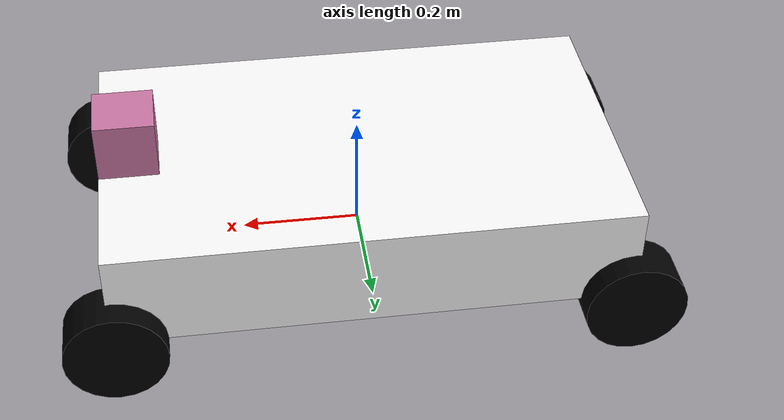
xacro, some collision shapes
<?xml version="1.0"?>

<robot xmlns:xacro="http://www.ros.org/wiki/xacro"
    xmlns:sensor="http://playerstage.sourceforge.net/gazebo/xmlschema/#controller"
    xmlns:interface="http://playerstage.sourceforge.net/gazebo/xmlschema/#interface"
    name="db_xcaro">

    <xacro:property name="length_wheel" value="0.08"    />
    <xacro:property name="radius_wheel" value="0.085"   />
    <xacro:macro name="default_inertial" params="mass">
        <inertial>
            <mass value="${mass}" />
            <inertia ixx="1.0" ixy="0.0" ixz="0.0"
                    iyy="1.0" iyz="0.0"
                    izz="1.0" />
        </inertial>
    </xacro:macro>
    <xacro:macro name="default_wheel">
        <geometry>
            <cylinder length="0.08" radius="0.085"/>
        </geometry>
    </xacro:macro>

    <link name="base_footprint" >
        <visual>
            <geometry>
                <box size="0.001 0.001 0.001"   />
            </geometry>
            <origin rpy="0 0 0" xyz="0 0 0" />
        </visual>
        <xacro:default_inertial mass="0.001"    />
    </link>

    <joint name="base_footprint_joint"   type="fixed">
        <origin xyz="0 0 0" />
        <parent link="base_footprint"   />
        <child link="base_link" />
    </joint>

    <link name="base_link" >
        <visual>
            <geometry>
                <box size="0.87 0.52 0.17"/>
            </geometry>
            <origin rpy="0 0 0" xyz="0 0 0.085" />
            <material name="white">
                <color rgba="1 1 1 1"   />
            </material>
        </visual>
        <collision>
            <geometry>
                <box size="0.87 0.52 0.17"  />
            </geometry>
        </collision>
        <xacro:default_inertial mass="27.2" />
    </link>

    <link name="wheel_up_left">
        <visual>
            <xacro:default_wheel    />
            <origin rpy="1.57079 0 0" xyz="0.426 0.26 0"    />
            <material name="black">
                <color rgba="0 0 0 1"/>
            </material>
        </visual>
        <collision>
            <xacro:default_wheel    />
        </collision>
        <xacro:default_inertial mass="2.0"  />
    </link>

    <joint name="base_to_up_left" type="fixed">
        <parent link="base_link"   />
        <child link="wheel_up_left" />
        <origin xyz="0 0 0" />
    </joint>

    <link name="wheel_up_right">
        <visual>
            <xacro:default_wheel    />
            <origin rpy="1.57079 0 0" xyz="0.426 -0.26 0"   />
            <material name="black"  />
        </visual>
        <collision>
            <xacro:default_wheel />
        </collision>
        <xacro:default_inertial mass="2.0"  />
    </link>

    <joint name="base_to_up_right" type="fixed" >
        <parent link="base_link"   />
        <child link="wheel_up_right"    />
        <origin xyz="0 0 0" />
    </joint>

    <link name="wheel_rear_left" >
        <visual>
            <xacro:default_wheel    />
            <origin rpy="1.57079 0 0" xyz="-0.426 0.26 0"   />
            <material name="black"  />
        </visual>
        <collision>
            <xacro:default_wheel    />
        </collision>
        <xacro:default_inertial mass="2.0"  />
    </link>

    <joint name="base_to_rear_left" type="fixed">
        <parent link="base_link"  />
        <child link="wheel_rear_left"   />
        <origin xyz="0 0 0" />
    </joint>

    <link name="wheel_rear_right"   >
        <visual>
            <xacro:default_wheel    />
            <origin rpy="1.57079 0 0" xyz="-0.426 -0.26 0"/>
            <material name="black"  />
        </visual>
        <collision>
            <xacro:default_wheel    />
        </collision>
        <xacro:default_inertial mass="2.0"  />
    </link>

    <joint name="base_to_rear_right" type="fixed">
        <parent link="base_link"   />
        <child link="wheel_rear_right"  />
        <origin xyz="0 0 0" />
    </joint>

    <!-- Hokuyo Laser -->
    <link name="hokuyo_link"    >
        <collision>
            <origin xyz="0 0 0" rpy="0 0 0" />
            <geometry>
                <box size="0.1 .1 .1"/>
            </geometry>
        </collision>
        <visual>
            <origin xyz="0 0 0" rpy="0 0 0"/>
            <geometry>
                <mesh filename="package://dbctrl/meshes/hokuyo.dae"/>
            </geometry>
        </visual>
        <inertial>
            <mass value="1e-5"  />
            <origin xyz="0 0 0" rpy="0 0 0" />
            <inertia ixx="1e-6" ixy="0" ixz="0" iyy="1e-6" iyz="0" izz="1e-6"/>
        </inertial>
    </link>

    <joint name="hokuyo_joint" type="fixed" >
        <axis xyz="0 0 1"   />
        <origin rpy="0 0 0" xyz="0.385 0 0.22" />
        <parent link="base_link"   />
        <child link="hokuyo_link"   />
    </joint>

</robot>
